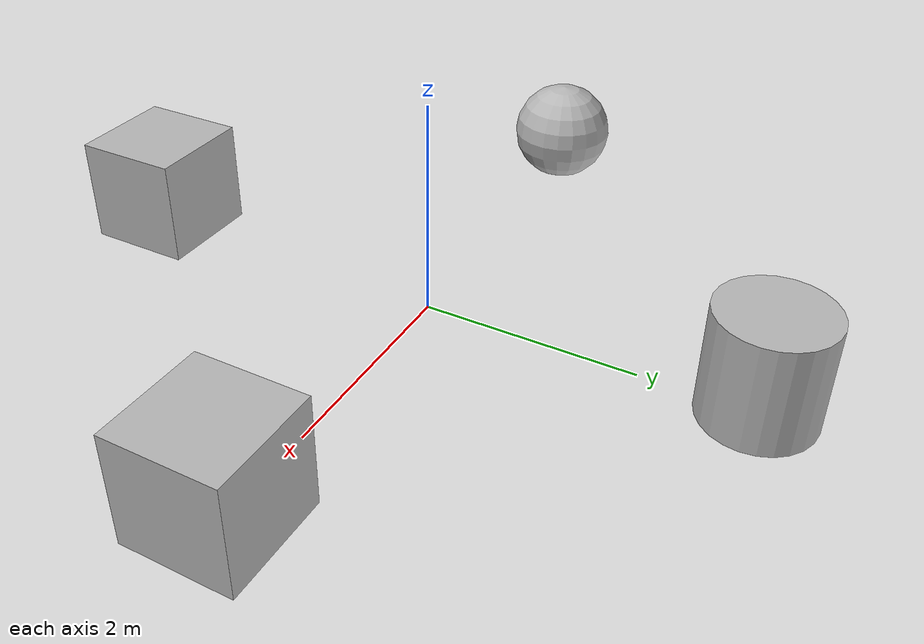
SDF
<?xml version="1.0" ?>
<sdf version="1.8">
  <world name="default">
    <plugin name="gz::sim::systems::Physics"          filename="gz-sim-physics-system" />
    <plugin name="gz::sim::systems::UserCommands"     filename="gz-sim-user-commands-system" />
    <plugin name="gz::sim::systems::SceneBroadcaster" filename="gz-sim-scene-broadcaster-system" />
    <plugin name="gz::sim::systems::Contact"          filename="gz-sim-contact-system" />
    <plugin name="gz::sim::systems::Sensors"          filename="gz-sim-sensors-system">
        <render_engine>ogre2</render_engine>
    </plugin>

    <model name="livox_lidar_model">
      <pose>0 0 0 0 0 0</pose>
      <static>true</static>
      <link name="lidar_link">
        <sensor name="livox_lidar_sensor" type="gpu_lidar">
          <pose>0 0 0.25 0 0 0</pose>
          <update_rate>10</update_rate>
          <always_on>1</always_on>
          <topic>/livox_lidar_sensor/scan</topic>
          <visualize>true</visualize>
          <ray>
            <scan>
              <horizontal>
                <samples>1440</samples>
                <resolution>1</resolution>
                <min_angle>-3.1416</min_angle>
                <max_angle>3.1416</max_angle>
              </horizontal>
              <vertical>
                <samples>1440</samples>
                <resolution>1</resolution>
                <min_angle>-3.1416</min_angle>
                <max_angle>3.1416</max_angle>
              </vertical>
            </scan>
            <range>
              <min>0.1</min>
              <max>50.0</max>
            </range>
          </ray>
          <plugin name="livox_lidar_plugin::LivoxLidar" filename="liblivox_lidar_plugin.so">
            <sensor_name>livox_lidar</sensor_name>
            <topic>/livox_points</topic>
            <frame_id>livox_frame</frame_id>
            <samples>24000</samples>
            <downsample>1</downsample>
            <sensor_topic>/livox_lidar_sensor/scan</sensor_topic>
            <h_samples>1440</h_samples>
            <v_samples>1440</v_samples>
          </plugin>
        </sensor>
      </link>
    </model>

    <model name="obstacle_1">
      <static>true</static>
      <pose>3 0 0.5 0 0 0</pose>
      <link name="link">
        <collision name="collision">
          <geometry>
            <box>
              <size>1 1 1</size>
            </box>
          </geometry>
        </collision>
        <visual name="visual">
          <geometry>
            <box>
              <size>1 1 1</size>
            </box>
          </geometry>
        </visual>
      </link>
    </model>

    <model name="obstacle_2">
      <static>true</static>
      <pose>-3 0 0.5 0 0 0</pose>
      <link name="link">
        <collision name="collision">
          <geometry>
            <sphere>
              <radius>0.5</radius>
            </sphere>
          </geometry>
        </collision>
        <visual name="visual">
          <geometry>
            <sphere>
              <radius>0.5</radius>
            </sphere>
          </geometry>
        </visual>
      </link>
    </model>

    <model name="obstacle_3">
      <static>true</static>
      <pose>0 3 0.5 0 0 0</pose>
      <link name="link">
        <collision name="collision">
          <geometry>
            <cylinder>
              <radius>0.5</radius>
              <length>1</length>
            </cylinder>
          </geometry>
        </collision>
        <visual name="visual">
          <geometry>
            <cylinder>
              <radius>0.5</radius>
              <length>1</length>
            </cylinder>
          </geometry>
        </visual>
      </link>
    </model>

    <model name="obstacle_4">
      <static>true</static>
      <pose>0 -3 0.5 0 0 0</pose>
      <link name="link">
        <collision name="collision">
          <geometry>
            <box>
              <size>1 1 1</size>
            </box>
          </geometry>
        </collision>
        <visual name="visual">
          <geometry>
            <box>
              <size>1 1 1</size>
            </box>
          </geometry>
        </visual>
      </link>
    </model>
  </world>
</sdf>
